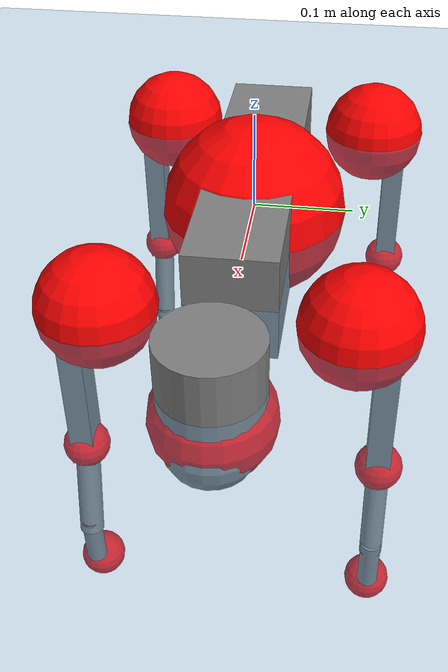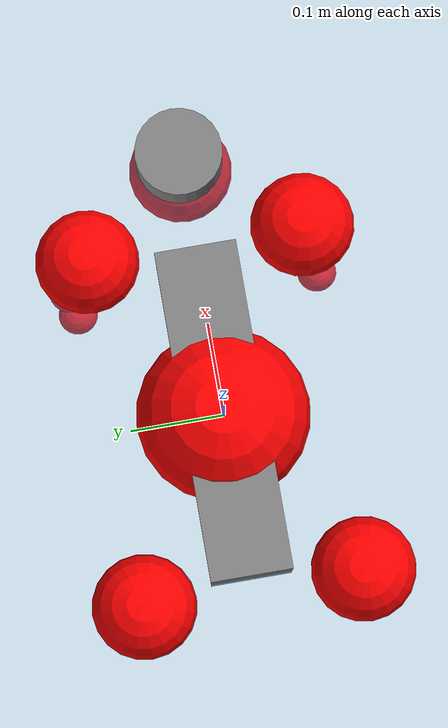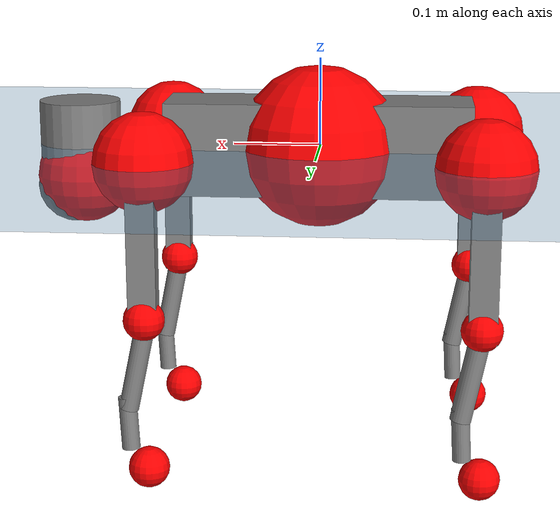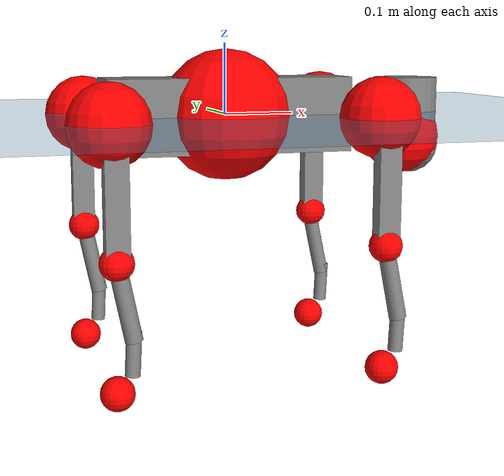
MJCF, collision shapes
<mujoco model="go2">
  <compiler angle="radian" assetdir="assets" balanceinertia="true" inertiafromgeom="false"/>

  <option timestep="0.005" density="1.2" viscosity="2e-05"/>

  <size nkey="1"/>

  <visual>
    <quality shadowsize="8192"/>
    <map shadowclip="0.5"/>
  </visual>

  <default>
    <default class="/">
      <geom contype="0" conaffinity="0" group="1" solref="-1000 -80"/>
      <site size="0.01 0.005 0.005" group="5"/>
      <general forcelimited="true" biastype="affine" gainprm="20" biasprm="0 -20 -0.5"/>
      <default class="go2">
        <joint armature="0.01" damping="0.01" frictionloss="0.2"/>
        <geom condim="1" margin="0.001"/>
        <default class="visual">
          <geom type="mesh" group="2"/>
        </default>
        <default class="collision">
          <geom group="3"/>
          <default class="foot">
            <geom size="0.022 0 0" condim="6" priority="1" friction="0.8 0.02 0.01" solimp="0.015 1 0.022"/>
          </default>
        </default>
        <default class="reward_collision_sphere">
          <geom group="5" rgba="1 0 0 1"/>
        </default>
      </default>
    </default>
  </default>

  <asset>
    <texture type="skybox" colorspace="auto" name="//unnamed_texture_0" builtin="gradient" rgb1="0.95 0.95 0.95" rgb2="0.95 0.95 0.95" width="100" height="600"/>
    <texture type="2d" colorspace="auto" name="texplane" builtin="checker" rgb1="0.345 0.575 0.748" rgb2="0.345 0.575 0.748" markrgb="1 1 1" width="512" height="512"/>
    <material name="MatPlane" class="/" texture="texplane" texuniform="true" texrepeat="2 2" specular="0.9"/>
    <material name="metal" class="/" rgba="0.9 0.95 0.95 1"/>
    <material name="black" class="/" rgba="0 0 0 1"/>
    <material name="white" class="/"/>
    <material name="gray" class="/" rgba="0.671705 0.692426 0.77427 1"/>
    <mesh name="base_0" class="/" file="base_0.obj"/>
    <mesh name="base_1" class="/" file="base_1.obj"/>
    <mesh name="base_2" class="/" file="base_2.obj"/>
    <mesh name="base_3" class="/" file="base_3.obj"/>
    <mesh name="base_4" class="/" file="base_4.obj"/>
    <mesh name="hip_0" class="/" file="hip_0.obj"/>
    <mesh name="hip_1" class="/" file="hip_1.obj"/>
    <mesh name="thigh_0" class="/" file="thigh_0.obj"/>
    <mesh name="thigh_1" class="/" file="thigh_1.obj"/>
    <mesh name="thigh_mirror_0" class="/" file="thigh_mirror_0.obj"/>
    <mesh name="thigh_mirror_1" class="/" file="thigh_mirror_1.obj"/>
    <mesh name="calf_0" class="/" file="calf_0.obj"/>
    <mesh name="calf_1" class="/" file="calf_1.obj"/>
    <mesh name="calf_mirror_0" class="/" file="calf_mirror_0.obj"/>
    <mesh name="calf_mirror_1" class="/" file="calf_mirror_1.obj"/>
    <mesh name="foot" class="/" file="foot.obj"/>
  </asset>

  <worldbody>
    <geom name="floor" class="/" size="100 100 0.125" type="plane" group="0" material="MatPlane"/>
    <light name="toplight_shadow" class="/" pos="0 0 5" dir="0.0990148 0.0990148 -0.990148" type="directional" ambient="0.04 0.04 0.04" diffuse="0.55 0.55 0.55" specular="0.12 0.12 0.12"/>
    <light name="toplight_fill" class="/" pos="0 0 5" dir="0.0990148 0.0990148 -0.990148" type="directional" castshadow="false" ambient="0.04 0.04 0.04" diffuse="0.3 0.3 0.3" specular="0.08 0.08 0.08"/>
    <body name="trunk" childclass="go2" pos="0.00105083 0.000173489 -0.000886172" quat="1 -0.000149807 1.49969e-05 -8.47165e-05">
      <inertial pos="0.0177992 -0.00244991 -0.00382055" quat="-0.00476492 0.712717 0.000154984 0.701436" mass="5.83173" diaginertia="0.0960273 0.102268 0.00867445"/>
      <joint name="//unnamed_joint_0" type="free" armature="0" damping="0" frictionloss="0"/>
      <geom name="//unnamed_geom_1" class="visual" material="black" mesh="base_0"/>
      <geom name="//unnamed_geom_2" class="visual" material="black" mesh="base_1"/>
      <geom name="//unnamed_geom_3" class="visual" material="black" mesh="base_2"/>
      <geom name="//unnamed_geom_4" class="visual" material="white" mesh="base_3"/>
      <geom name="//unnamed_geom_5" class="visual" material="gray" mesh="base_4"/>
      <geom name="trunk_1" class="collision" size="0.175419 0.0435983 0.0531573" type="box"/>
      <geom name="trunk_2" class="collision" size="0.0466292 0.0419663" pos="0.278568 0 0.00813313" type="cylinder"/>
      <geom name="trunk_3" class="collision" size="0.0438315" pos="0.286388 0 -0.0487988"/>
      <geom name="//unnamed_geom_9" class="reward_collision_sphere" size="0.0932584"/>
      <geom name="//unnamed_geom_10" class="reward_collision_sphere" size="0.0559551" pos="0.273681 0 -0.0365991"/>
      <site name="imu" pos="-0.0123125 -7.0263e-05 0.0217817" size="0.00932584"/>
      <camera name="track" pos="0 -2.01401 0" quat="0.707107 0.707107 0 0" mode="trackcom"/>
      <camera name="ego_camera" pos="0.304959 0 0.0365991" quat="-0.5 -0.5 0.5 0.5"/>
      <body name="FL_hip" pos="0.186449 0.0450098 -0.000141823" quat="1 -0.000233929 -8.09941e-05 -0.00011212">
        <inertial pos="-0.00509927 0.000685041 -0.00078375" quat="0.497063 0.499159 0.505509 0.498227" mass="0.532453" diaginertia="0.000760931 0.000581924 0.00016564"/>
        <joint name="FL_hip_joint" pos="0 0 0" axis="0.999998 0.00137091 0.00154371" range="-1.05147 1.0379" armature="0.00952841" damping="0.00669945" frictionloss="0.176053"/>
        <geom name="//unnamed_geom_11" class="visual" material="metal" mesh="hip_0"/>
        <geom name="//unnamed_geom_12" class="visual" material="gray" mesh="hip_1"/>
        <geom name="//unnamed_geom_13" class="collision" size="0.0428989 0.0186517" pos="0 0.0805605 0" quat="0.707107 0.707107 0 0" type="cylinder"/>
        <geom name="//unnamed_geom_14" class="reward_collision_sphere" size="0.0559551" pos="0 0.0704905 0"/>
        <body name="FL_thigh" pos="-0.00139533 0.0981769 0.00201499" quat="0.999999 0.000182828 0.000552569 0.00101678">
          <inertial pos="-0.00360612 -0.0221308 -0.0261733" quat="0.830194 0.0811855 -0.0117368 0.551407" mass="0.914016" diaginertia="0.00528037 0.00582094 0.000307204"/>
          <joint name="FL_thigh_joint" pos="0 0 0" axis="0.00131974 0.999966 0.00816485" stiffness="0.00553986" range="-1.52109 3.51404" armature="0.00983569" damping="0.0132246" frictionloss="0.182119"/>
          <geom name="//unnamed_geom_15" class="visual" material="metal" mesh="thigh_0"/>
          <geom name="//unnamed_geom_16" class="visual" material="gray" mesh="thigh_1"/>
          <geom name="//unnamed_geom_17" class="collision" size="0.0993202 0.0114242 0.0158539" pos="0 0 -0.0866179" quat="0.707107 0 0.707107 0" type="box"/>
          <body name="FL_calf" pos="-0.000432473 0.00133014 -0.172893" quat="1 0.000180591 0.000244339 -0.000141172">
            <inertial pos="0.00657417 -0.00147863 -0.114599" quat="0.7106 0.00140798 -0.0044528 0.703581" mass="0.196548" diaginertia="0.0013045 0.00153291 1.88512e-05"/>
            <joint name="FL_calf_joint" pos="0 0 0" axis="-0.00812321 0.999966 -0.00159286" range="-2.70368 -0.841908" armature="0.00890592" damping="0.00168628" frictionloss="0.184863"/>
            <geom name="//unnamed_geom_18" class="visual" material="gray" mesh="calf_0"/>
            <geom name="//unnamed_geom_19" class="visual" material="black" mesh="calf_1"/>
            <geom name="FL_calf0" class="collision" size="0.011191 0.0559551" pos="0.00781946 0 -0.0487988" quat="0.994493 0 -0.104807 0" type="cylinder"/>
            <geom name="//unnamed_geom_21" class="collision" size="0.0102584 0.030309" pos="0.0195487 0 -0.12037" quat="0.999688 0 0.0249974 0" type="cylinder"/>
            <geom name="//unnamed_geom_22" class="visual" pos="0 0 -0.173236" quat="1 0 0 0" material="black" mesh="foot"/>
            <geom name="FL_foot" class="foot" size="0.0168123" pos="-0.00195487 0 -0.173236"/>
            <geom name="//unnamed_geom_24" class="reward_collision_sphere" size="0.0233146"/>
            <geom name="//unnamed_geom_25" class="reward_collision_sphere" size="0.0233146" pos="-0.00195487 0 -0.173236"/>
            <site name="FL_foot" class="foot" pos="-0.00195487 0 -0.173236" size="0.00932584"/>
          </body>
        </body>
      </body>
      <body name="FR_hip" pos="0.187007 -0.0476001 0.000677561" quat="1 -4.55164e-05 2.22616e-05 -7.36642e-06">
        <inertial pos="-0.00585901 -0.00439852 -0.00150567" quat="0.506793 0.505141 0.500739 0.487087" mass="0.542998" diaginertia="0.000764661 0.000632316 0.000166118"/>
        <joint name="FR_hip_joint" pos="0 0 0" axis="0.99992 0.00660351 0.0107949" range="-1.06325 1.05787" armature="0.00930198" damping="0.000557042" frictionloss="0.179223"/>
        <geom name="//unnamed_geom_26" class="visual" pos="0 1.68738e-09 7.2375e-08" quat="4.63268e-05 1 0 0" material="metal" mesh="hip_0"/>
        <geom name="//unnamed_geom_27" class="visual" pos="0 2.73544e-09 -1.79011e-07" quat="4.63268e-05 1 0 0" material="gray" mesh="hip_1"/>
        <geom name="//unnamed_geom_28" class="collision" size="0.0428989 0.0186517" pos="0 -0.0805605 0" quat="0.707107 0.707107 0 0" type="cylinder"/>
        <geom name="//unnamed_geom_29" class="reward_collision_sphere" size="0.0559551" pos="0 -0.0704905 0"/>
        <body name="FR_thigh" pos="0.000746176 -0.0972413 -0.00196162" quat="0.999999 -0.000851394 0.0005476 -0.000391118">
          <inertial pos="-0.00107828 0.0235328 -0.027038" quat="0.552734 -0.0227046 0.0839884 0.828803" mass="0.965019" diaginertia="0.00529749 0.00594416 0.000325686"/>
          <joint name="FR_thigh_joint" pos="0 0 0" axis="0.00410535 -0.999991 -0.000586943" stiffness="0.000270873" range="-3.50964 1.58927" armature="0.00889949" damping="0.00933836" frictionloss="0.181918"/>
          <geom name="//unnamed_geom_30" class="visual" material="metal" mesh="thigh_mirror_0"/>
          <geom name="//unnamed_geom_31" class="visual" material="gray" mesh="thigh_mirror_1"/>
          <geom name="//unnamed_geom_32" class="collision" size="0.0993202 0.0114242 0.0158539" pos="0 0 -0.0866179" quat="0.707107 0 0.707107 0" type="box"/>
          <body name="FR_calf" pos="-0.000420375 0.000253323 -0.17215" quat="1 0.000278339 0.000148011 2.27405e-06">
            <inertial pos="0.00438275 0.000738071 -0.115212" quat="0.704944 -0.0157463 -0.00494067 0.709071" mass="0.201732" diaginertia="0.00135059 0.00155616 1.92964e-05"/>
            <joint name="FR_calf_joint" pos="0 0 0" axis="-0.00104235 -0.999994 0.00342804" range="0.785524 2.71037" armature="0.0103256" damping="0.0203138" frictionloss="0.183546"/>
            <geom name="//unnamed_geom_33" class="visual" material="gray" mesh="calf_mirror_0"/>
            <geom name="//unnamed_geom_34" class="visual" material="black" mesh="calf_mirror_1"/>
            <geom name="FR_calf0" class="collision" size="0.0121236 0.0559551" pos="0.00977433 0 -0.0487988" quat="0.995004 0 -0.0998334 0" type="cylinder"/>
            <geom name="//unnamed_geom_36" class="collision" size="0.0102584 0.030309" pos="0.0195487 0 -0.12037" quat="0.999688 0 0.0249974 0" type="cylinder"/>
            <geom name="//unnamed_geom_37" class="visual" pos="0 0 -0.173236" quat="1 0 0 0" material="black" mesh="foot"/>
            <geom name="FR_foot" class="foot" size="0.0212008" pos="-0.00195487 0 -0.173236"/>
            <geom name="//unnamed_geom_39" class="reward_collision_sphere" size="0.0233146"/>
            <geom name="//unnamed_geom_40" class="reward_collision_sphere" size="0.0233146" pos="-0.00195487 0 -0.173236"/>
            <site name="FR_foot" class="foot" pos="-0.00195487 0 -0.173236" size="0.00932584"/>
          </body>
        </body>
      </body>
      <body name="RL_hip" pos="-0.186599 0.046271 -0.00300864" quat="1 -0.000113315 0.000116682 -1.1683e-05">
        <inertial pos="0.00513346 0.00349399 -0.00204512" quat="0.507637 0.490911 0.502837 0.498464" mass="0.567019" diaginertia="0.000840781 0.000644602 0.000175754"/>
        <joint name="RL_hip_joint" pos="0 0 0" axis="-0.9999 0.0140623 -0.001656" stiffness="0.000638684" range="-1.04435 1.02765" armature="0.0093289" damping="0" frictionloss="0.186007"/>
        <geom name="//unnamed_geom_41" class="visual" pos="-1.42974e-09 0 -2.80262e-07" quat="4.63268e-05 0 1 0" material="metal" mesh="hip_0"/>
        <geom name="//unnamed_geom_42" class="visual" pos="-2.31778e-09 0 -2.48552e-07" quat="4.63268e-05 0 1 0" material="gray" mesh="hip_1"/>
        <geom name="//unnamed_geom_43" class="collision" size="0.0428989 0.0186517" pos="0 0.0805605 0" quat="0.707107 0.707107 0 0" type="cylinder"/>
        <geom name="//unnamed_geom_44" class="reward_collision_sphere" size="0.0559551" pos="0 0.0704905 0"/>
        <body name="RL_thigh" pos="-1.35274e-05 0.0969829 4.1079e-05" quat="1 -0.000164095 0.000299478 0.000181748">
          <inertial pos="-0.00618556 -0.0231748 -0.029295" quat="0.829761 0.0836714 -0.0210667 0.55141" mass="0.925142" diaginertia="0.00504474 0.00604571 0.000304374"/>
          <joint name="RL_thigh_joint" pos="0 0 0" axis="-0.00353708 0.999953 -0.00906384" stiffness="0.0147295" range="-0.522882 4.51484" armature="0.00893463" damping="0" frictionloss="0.185175"/>
          <geom name="//unnamed_geom_45" class="visual" material="metal" mesh="thigh_0"/>
          <geom name="//unnamed_geom_46" class="visual" material="gray" mesh="thigh_1"/>
          <geom name="//unnamed_geom_47" class="collision" size="0.0993202 0.0114242 0.0158539" pos="0 0 -0.0866179" quat="0.707107 0 0.707107 0" type="box"/>
          <body name="RL_calf" pos="0.00048069 -0.000443847 -0.172319" quat="1 3.24225e-05 2.61458e-05 -5.38976e-06">
            <inertial pos="0.00616921 0.00189567 -0.113945" quat="0.71188 0.00545887 -0.00507244 0.702261" mass="0.202031" diaginertia="0.00135263 0.00160981 1.92814e-05"/>
            <joint name="RL_calf_joint" pos="0 0 0" axis="-0.00862121 0.99991 0.0102893" stiffness="0.000178969" range="-2.67676 -0.864604" armature="0.0105005" damping="0.0144498" frictionloss="0.167239"/>
            <geom name="//unnamed_geom_48" class="visual" material="gray" mesh="calf_0"/>
            <geom name="//unnamed_geom_49" class="visual" material="black" mesh="calf_1"/>
            <geom name="RL_calf0" class="collision" size="0.0121236 0.0559551" pos="0.00977433 0 -0.0487988" quat="0.995004 0 -0.0998334 0" type="cylinder"/>
            <geom name="//unnamed_geom_51" class="collision" size="0.0102584 0.030309" pos="0.0195487 0 -0.12037" quat="0.999688 0 0.0249974 0" type="cylinder"/>
            <geom name="//unnamed_geom_52" class="visual" pos="0 0 -0.173236" quat="1 0 0 0" material="black" mesh="foot"/>
            <geom name="RL_foot" class="foot" size="0.0179981" pos="-0.00195487 0 -0.173236"/>
            <geom name="//unnamed_geom_54" class="reward_collision_sphere" size="0.0233146"/>
            <geom name="//unnamed_geom_55" class="reward_collision_sphere" size="0.0233146" pos="-0.00195487 0 -0.173236"/>
            <site name="RL_foot" class="foot" pos="-0.00195487 0 -0.173236" size="0.00932584"/>
          </body>
        </body>
      </body>
      <body name="RR_hip" pos="-0.186446 -0.0477296 -0.00147114" quat="1 0.00030479 -0.000123438 0.000104591">
        <inertial pos="0.00454035 -0.00163762 -0.00274662" quat="0.510187 0.490864 0.496257 0.502484" mass="0.545627" diaginertia="0.000764753 0.000595321 0.000164835"/>
        <joint name="RR_hip_joint" pos="0 0 0" axis="-0.999916 0.0112673 0.00643926" stiffness="0.00384773" range="-1.09375 1.04735" armature="0.00957346" damping="0.00459561" frictionloss="0.185903"/>
        <geom name="//unnamed_geom_56" class="visual" pos="1.43076e-09 1.68738e-09 -3.52637e-07" quat="2.14617e-09 4.63268e-05 4.63268e-05 -1" material="metal" mesh="hip_0"/>
        <geom name="//unnamed_geom_57" class="visual" pos="2.31525e-09 2.73544e-09 -6.95413e-08" quat="2.14617e-09 4.63268e-05 4.63268e-05 -1" material="gray" mesh="hip_1"/>
        <geom name="//unnamed_geom_58" class="collision" size="0.0428989 0.0186517" pos="0 -0.0805605 0" quat="0.707107 0.707107 0 0" type="cylinder"/>
        <geom name="//unnamed_geom_59" class="reward_collision_sphere" size="0.0559551" pos="0 -0.0704905 0"/>
        <body name="RR_thigh" pos="0.00266158 -0.0964038 -0.00189507" quat="0.999999 0.000844491 0.000260333 -0.000541689">
          <inertial pos="-0.003496 0.0230726 -0.0277171" quat="0.552383 -0.0205349 0.0846952 0.829022" mass="0.904871" diaginertia="0.00513754 0.00595124 0.000309783"/>
          <joint name="RR_thigh_joint" pos="0 0 0" axis="0.00104933 -0.99999 0.00436811" stiffness="0.00252674" range="-4.5263 0.546252" armature="0.00961559" damping="0.0122932" frictionloss="0.188691"/>
          <geom name="//unnamed_geom_60" class="visual" material="metal" mesh="thigh_mirror_0"/>
          <geom name="//unnamed_geom_61" class="visual" material="gray" mesh="thigh_mirror_1"/>
          <geom name="//unnamed_geom_62" class="collision" size="0.0993202 0.0114242 0.0158539" pos="0 0 -0.0866179" quat="0.707107 0 0.707107 0" type="box"/>
          <body name="RR_calf" pos="-0.000507975 0.00198145 -0.172624" quat="0.999999 -0.00030481 0.00096753 0.000664108">
            <inertial pos="0.00791462 0.000962319 -0.116194" quat="0.703186 -0.00914962 -0.00593656 0.710922" mass="0.199747" diaginertia="0.0013285 0.00151723 1.89736e-05"/>
            <joint name="RR_calf_joint" pos="0 0 0" axis="-0.000354008 -0.999997 -0.00250858" range="0.836744 2.77519" armature="0.00932974" damping="0.0189851" frictionloss="0.182881"/>
            <geom name="//unnamed_geom_63" class="visual" material="gray" mesh="calf_mirror_0"/>
            <geom name="//unnamed_geom_64" class="visual" material="black" mesh="calf_mirror_1"/>
            <geom name="RR_calf0" class="collision" size="0.0121236 0.0559551" pos="0.00977433 0 -0.0487988" quat="0.995004 0 -0.0998334 0" type="cylinder"/>
            <geom name="//unnamed_geom_66" class="collision" size="0.0102584 0.030309" pos="0.0195487 0 -0.12037" quat="0.999688 0 0.0249974 0" type="cylinder"/>
            <geom name="//unnamed_geom_67" class="visual" pos="0 0 -0.173236" quat="1 0 0 0" material="black" mesh="foot"/>
            <geom name="RR_foot" class="foot" size="0.0207417" pos="-0.00195487 0 -0.173236"/>
            <geom name="//unnamed_geom_69" class="reward_collision_sphere" size="0.0233146"/>
            <geom name="//unnamed_geom_70" class="reward_collision_sphere" size="0.0233146" pos="-0.00195487 0 -0.173236"/>
            <site name="RR_foot" class="foot" pos="-0.00195487 0 -0.173236" size="0.00932584"/>
          </body>
        </body>
      </body>
    </body>
  </worldbody>

  <contact>
    <pair class="/" geom1="floor" geom2="FL_foot" name="//unnamed_contact_0"/>
    <pair class="/" geom1="floor" geom2="FR_foot" name="//unnamed_contact_1"/>
    <pair class="/" geom1="floor" geom2="RL_foot" name="//unnamed_contact_2"/>
    <pair class="/" geom1="floor" geom2="RR_foot" name="//unnamed_contact_3"/>
  </contact>

  <actuator>
    <general name="FL_hip" class="/" joint="FL_hip_joint" forcerange="-20.5094 20.5094" gainprm="18.5609" biasprm="0 -18.5609 -0.461456"/>
    <general name="FL_thigh" class="/" joint="FL_thigh_joint" forcerange="-19.9729 19.9729" gainprm="18.5609" biasprm="0 -18.5609 -0.461456"/>
    <general name="FL_calf" class="/" joint="FL_calf_joint" forcerange="-43.5754 43.5754" gainprm="18.5609" biasprm="0 -18.5609 -0.461456"/>
    <general name="FR_hip" class="/" joint="FR_hip_joint" forcerange="-22.2043 22.2043" gainprm="18.5609" biasprm="0 -18.5609 -0.461456"/>
    <general name="FR_thigh" class="/" joint="FR_thigh_joint" forcerange="-23.205 23.205" gainprm="18.5609" biasprm="0 -18.5609 -0.461456"/>
    <general name="FR_calf" class="/" joint="FR_calf_joint" forcerange="-43.4462 43.4462" gainprm="18.5609" biasprm="0 -18.5609 -0.461456"/>
    <general name="RL_hip" class="/" joint="RL_hip_joint" forcerange="-22.3024 22.3024" gainprm="18.5609" biasprm="0 -18.5609 -0.461456"/>
    <general name="RL_thigh" class="/" joint="RL_thigh_joint" forcerange="-20.887 20.887" gainprm="18.5609" biasprm="0 -18.5609 -0.461456"/>
    <general name="RL_calf" class="/" joint="RL_calf_joint" forcerange="-41.1838 41.1838" gainprm="18.5609" biasprm="0 -18.5609 -0.461456"/>
    <general name="RR_hip" class="/" joint="RR_hip_joint" forcerange="-22.3139 22.3139" gainprm="18.5609" biasprm="0 -18.5609 -0.461456"/>
    <general name="RR_thigh" class="/" joint="RR_thigh_joint" forcerange="-23.966 23.966" gainprm="18.5609" biasprm="0 -18.5609 -0.461456"/>
    <general name="RR_calf" class="/" joint="RR_calf_joint" forcerange="-40.729 40.729" gainprm="18.5609" biasprm="0 -18.5609 -0.461456"/>
  </actuator>

  <sensor>
    <gyro site="imu" name="imu_angular_velocity"/>
    <velocimeter site="imu" name="imu_linear_velocity"/>
    <framelinvel objtype="site" objname="FL_foot" name="FL_foot_global_linear_velocity"/>
    <framelinvel objtype="site" objname="FR_foot" name="FR_foot_global_linear_velocity"/>
    <framelinvel objtype="site" objname="RL_foot" name="RL_foot_global_linear_velocity"/>
    <framelinvel objtype="site" objname="RR_foot" name="RR_foot_global_linear_velocity"/>
  </sensor>

  <keyframe>
    <key name="home" qpos="0 0 0.325 1 0 0 0 0.1 0.8 -1.5 -0.1 -0.8 1.5 -0.1 0.8 -1.5 0.1 -0.8 1.5"/>
  </keyframe>
</mujoco>
